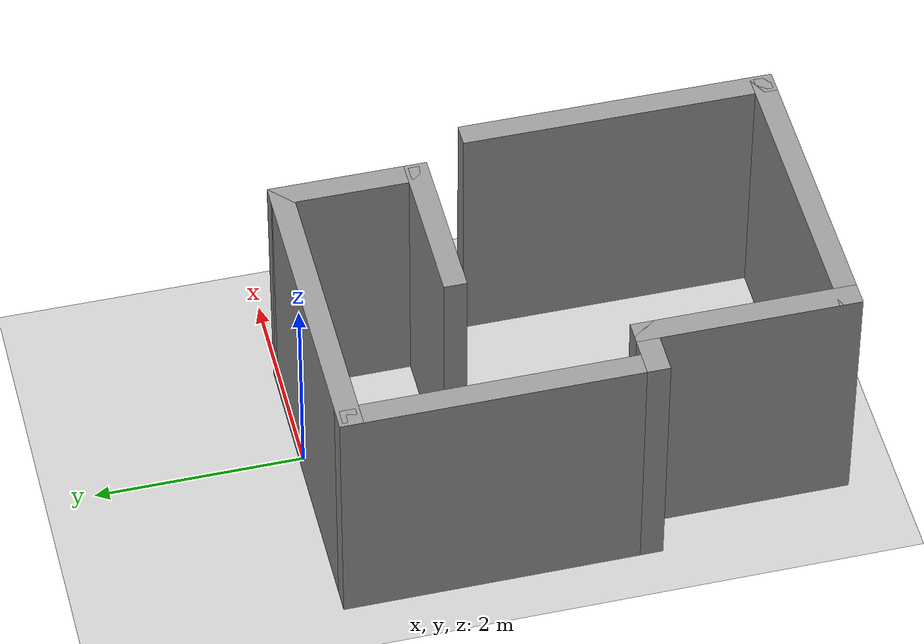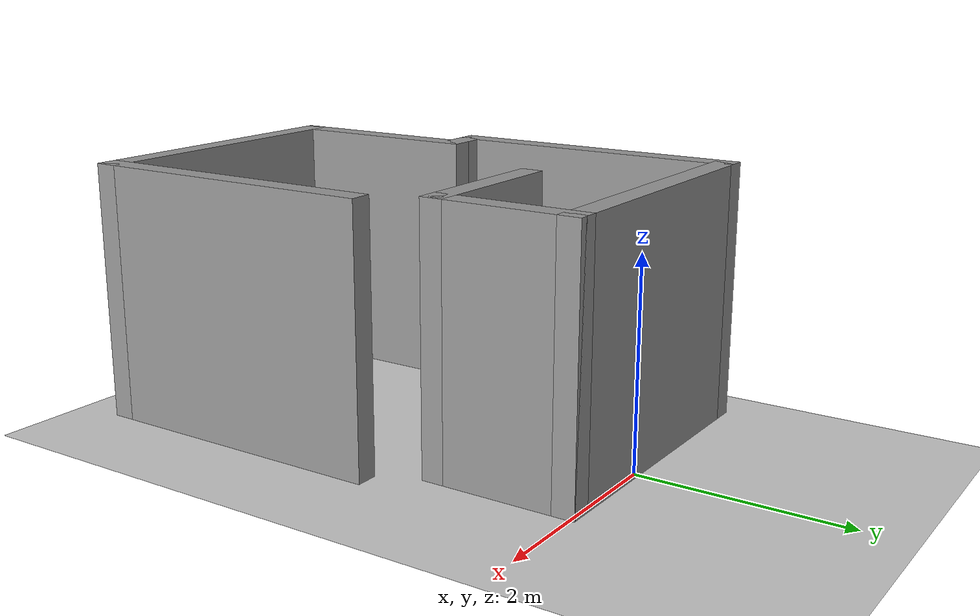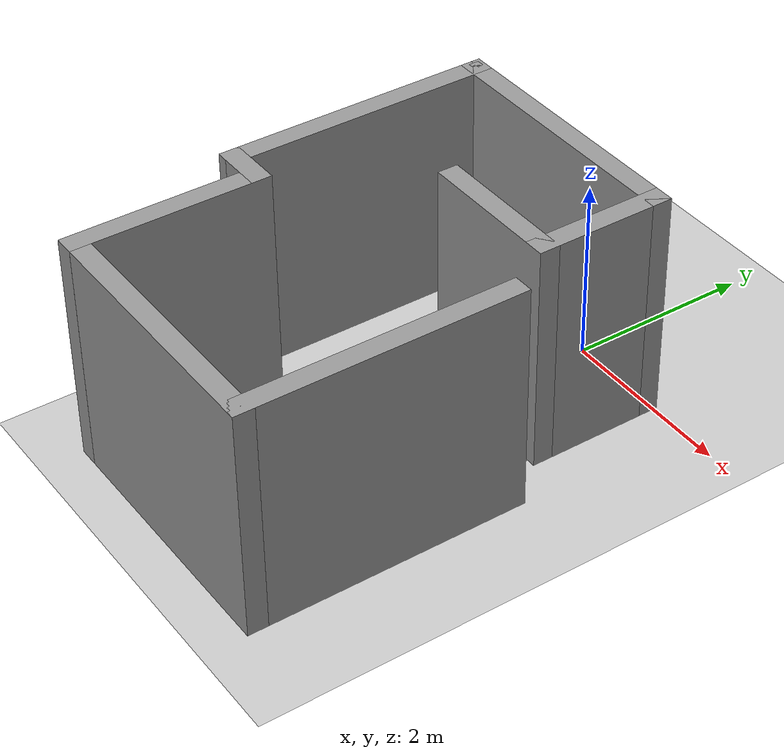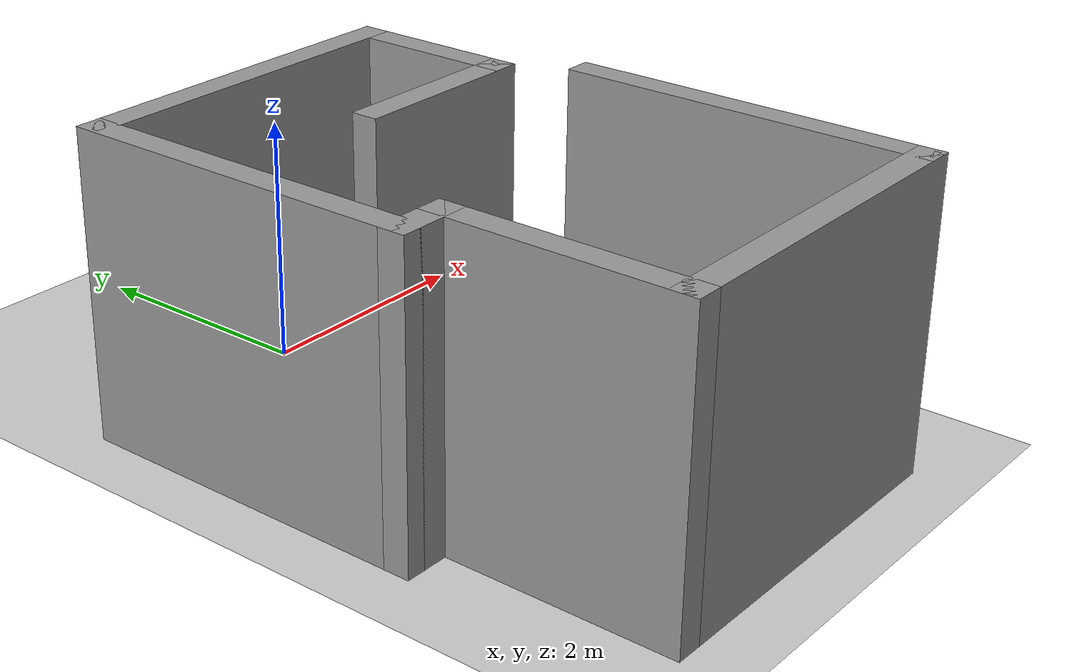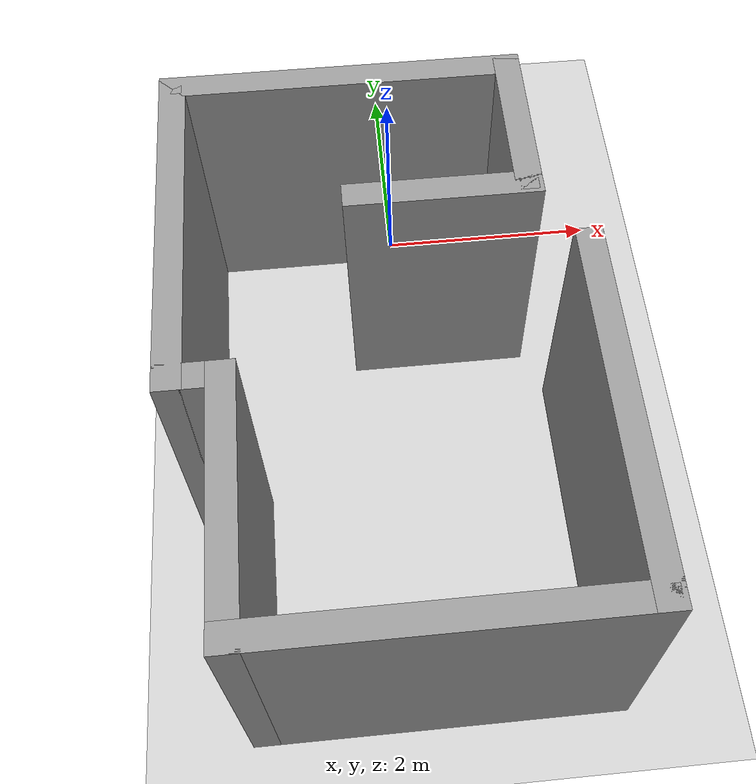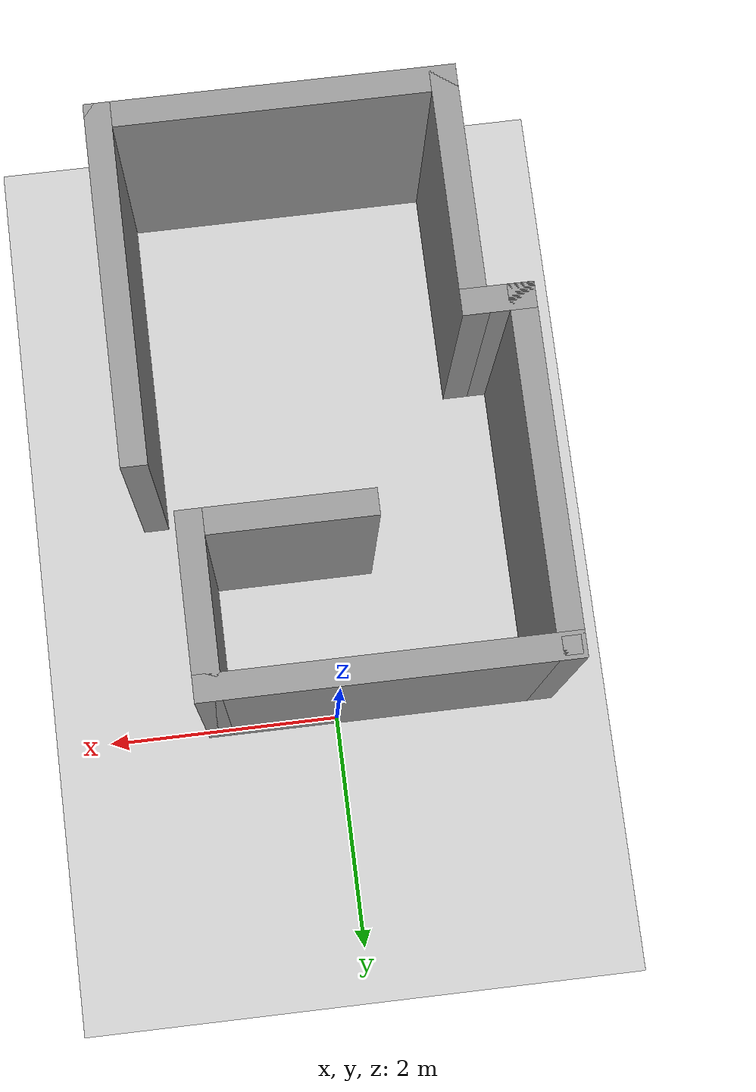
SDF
<sdf version="1.6">
 <world name="default">
  <light name="sun" type="directional">
   <pose>0 0 10 0 -0 0</pose>
   <diffuse>0.8 0.8 0.8 1</diffuse>
   <specular>0.2 0.2 0.2 1</specular>
   <attenuation>
    <range>1000</range>
    <constant>0.9</constant>
    <linear>0.01</linear>
    <quadratic>0.001</quadratic>
   </attenuation>
   <direction>-0.5 0.1 -0.9</direction>
  </light>
  <model name="ground_plane">
   <static>1</static>
   <link name="link">
    <collision name="collision">
     <geometry><plane><normal>0 0 1</normal><size>100 100</size></plane></geometry>
     <surface>
      <contact><collide_bitmask>65535</collide_bitmask></contact>
      <friction><ode><mu>100</mu><mu2>50</mu2></ode></friction>
     </surface>
    </collision>
    <visual name="visual">
     <cast_shadows>0</cast_shadows>
     <geometry><plane><normal>0 0 1</normal><size>100 100</size></plane></geometry>
     <material>
      <script><uri>file://media/materials/scripts/gazebo.material</uri><name>Gazebo/Grey</name></script>
     </material>
    </visual>
   </link>
  </model>
  <gravity>0 0 -9.8</gravity>
  <magnetic_field>6e-06 2.3e-05 -4.2e-05</magnetic_field>
  <atmosphere type="adiabatic"/>
  <physics name="default_physics" default="0" type="ode">
   <max_step_size>0.001</max_step_size>
   <real_time_factor>1</real_time_factor>
   <real_time_update_rate>1000</real_time_update_rate>
  </physics>
  <scene><ambient>0.4 0.4 0.4 1</ambient><background>0.7 0.7 0.7 1</background><shadows>1</shadows></scene>
  <audio><device>default</device></audio>
  <spherical_coordinates>
   <surface_model>EARTH_WGS84</surface_model>
   <latitude_deg>0</latitude_deg>
   <longitude_deg>0</longitude_deg>
   <elevation>0</elevation>
   <heading_deg>0</heading_deg>
  </spherical_coordinates>
  <model name="Environment">
   <pose>-0.194013 -2.42989 0 0 -0 0</pose>
   <link name="Wall_0">
    <collision name="Wall_0_Collision">
     <geometry><box><size>3.039 0.22 2.5</size></box></geometry>
     <pose>0 0 1.25 0 -0 0</pose>
    </collision>
    <visual name="Wall_0_Visual">
     <pose>0 0 1.25 0 -0 0</pose>
     <geometry><box><size>3.039 0.22 2.5</size></box></geometry>
     <material>
      <script><uri>file://media/materials/scripts/gazebo.material</uri><name>Gazebo/Grey</name></script>
      <ambient>1 1 1 1</ambient>
     </material>
     <meta><layer>0</layer></meta>
    </visual>
    <pose>1.59999 -0.952178 0 0 -0 -1.5708</pose>
   </link>
   <link name="Wall_1">
    <collision name="Wall_1_Collision">
     <geometry><box><size>0.15 0.15 2.5</size></box></geometry>
     <pose>0 0 1.25 0 -0 0</pose>
    </collision>
    <visual name="Wall_1_Visual">
     <pose>0 0 1.25 0 -0 0</pose>
     <geometry><box><size>0.15 0.15 2.5</size></box></geometry>
     <material>
      <script><uri>file://media/materials/scripts/gazebo.material</uri><name>Gazebo/Grey</name></script>
      <ambient>1 1 1 1</ambient>
     </material>
     <meta><layer>0</layer></meta>
    </visual>
    <pose>1.59999 -2.36168 0 0 -0 0</pose>
   </link>
   <link name="Wall_10">
    <collision name="Wall_10_Collision">
     <geometry><box><size>0.15 0.15 2.5</size></box></geometry>
     <pose>0 0 1.25 0 -0 0</pose>
    </collision>
    <visual name="Wall_10_Visual">
     <pose>0 0 1.25 0 -0 0</pose>
     <geometry><box><size>0.15 0.15 2.5</size></box></geometry>
     <material>
      <script><uri>file://media/materials/scripts/gazebo.material</uri><name>Gazebo/Grey</name></script>
      <ambient>1 1 1 1</ambient>
     </material>
     <meta><layer>0</layer></meta>
    </visual>
    <pose>-1.59999 2.36189 0 0 -0 0</pose>
   </link>
   <link name="Wall_12">
    <collision name="Wall_12_Collision">
     <geometry><box><size>3.039 0.22 2.5</size></box></geometry>
     <pose>0 0 1.25 0 -0 0</pose>
    </collision>
    <visual name="Wall_12_Visual">
     <pose>0 0 1.25 0 -0 0</pose>
     <geometry><box><size>3.039 0.22 2.5</size></box></geometry>
     <material>
      <script><uri>file://media/materials/scripts/gazebo.material</uri><name>Gazebo/Grey</name></script>
      <ambient>1 1 1 1</ambient>
     </material>
     <meta><layer>0</layer></meta>
    </visual>
    <pose>-0.190487 2.36189 0 0 -0 0</pose>
   </link>
   <link name="Wall_14">
    <collision name="Wall_14_Collision">
     <geometry><box><size>1.515 0.22 2.5</size></box></geometry>
     <pose>0 0 1.25 0 -0 0</pose>
    </collision>
    <visual name="Wall_14_Visual">
     <pose>0 0 1.25 0 -0 0</pose>
     <geometry><box><size>1.515 0.22 2.5</size></box></geometry>
     <material>
      <script><uri>file://media/materials/scripts/gazebo.material</uri><name>Gazebo/Grey</name></script>
      <ambient>1 1 1 1</ambient>
     </material>
     <meta><layer>0</layer></meta>
    </visual>
    <pose>1.21901 1.71439 0 0 -0 -1.5708</pose>
   </link>
   <link name="Wall_15">
    <collision name="Wall_15_Collision">
     <geometry><box><size>0.15 0.15 2.5</size></box></geometry>
     <pose>0 0 1.25 0 -0 0</pose>
    </collision>
    <visual name="Wall_15_Visual">
     <pose>0 0 1.25 0 -0 0</pose>
     <geometry><box><size>0.15 0.15 2.5</size></box></geometry>
     <material>
      <script><uri>file://media/materials/scripts/gazebo.material</uri><name>Gazebo/Grey</name></script>
      <ambient>1 1 1 1</ambient>
     </material>
     <meta><layer>0</layer></meta>
    </visual>
    <pose>1.21901 1.06689 0 0 -0 0</pose>
   </link>
   <link name="Wall_17">
    <collision name="Wall_17_Collision">
     <geometry><box><size>1.594 0.22 2.5</size></box></geometry>
     <pose>0 0 1.25 0 -0 0</pose>
    </collision>
    <visual name="Wall_17_Visual">
     <pose>0 0 1.25 0 -0 0</pose>
     <geometry><box><size>1.594 0.22 2.5</size></box></geometry>
     <material>
      <script><uri>file://media/materials/scripts/gazebo.material</uri><name>Gazebo/Grey</name></script>
      <ambient>1 1 1 1</ambient>
     </material>
     <meta><layer>0</layer></meta>
    </visual>
    <pose>0.532013 1.06689 0 0 -0 3.14159</pose>
   </link>
   <link name="Wall_3">
    <collision name="Wall_3_Collision">
     <geometry><box><size>3.039 0.22 2.5</size></box></geometry>
     <pose>0 0 1.25 0 -0 0</pose>
    </collision>
    <visual name="Wall_3_Visual">
     <pose>0 0 1.25 0 -0 0</pose>
     <geometry><box><size>3.039 0.22 2.5</size></box></geometry>
     <material>
      <script><uri>file://media/materials/scripts/gazebo.material</uri><name>Gazebo/Grey</name></script>
      <ambient>1 1 1 1</ambient>
     </material>
     <meta><layer>0</layer></meta>
    </visual>
    <pose>0.190487 -2.36168 0 0 -0 3.14159</pose>
   </link>
   <link name="Wall_5">
    <collision name="Wall_5_Collision">
     <geometry><box><size>2.125 0.22 2.5</size></box></geometry>
     <pose>0 0 1.25 0 -0 0</pose>
    </collision>
    <visual name="Wall_5_Visual">
     <pose>0 0 1.25 0 -0 0</pose>
     <geometry><box><size>2.125 0.22 2.5</size></box></geometry>
     <material>
      <script><uri>file://media/materials/scripts/gazebo.material</uri><name>Gazebo/Grey</name></script>
      <ambient>1 1 1 1</ambient>
     </material>
     <meta><layer>0</layer></meta>
    </visual>
    <pose>-1.219 -1.40939 0 0 -0 1.57078</pose>
   </link>
   <link name="Wall_7">
    <collision name="Wall_7_Collision">
     <geometry><box><size>0.601 0.22 2.5</size></box></geometry>
     <pose>0 0 1.25 0 -0 0</pose>
    </collision>
    <visual name="Wall_7_Visual">
     <pose>0 0 1.25 0 -0 0</pose>
     <geometry><box><size>0.601 0.22 2.5</size></box></geometry>
     <material>
      <script><uri>file://media/materials/scripts/gazebo.material</uri><name>Gazebo/Grey</name></script>
      <ambient>1 1 1 1</ambient>
     </material>
     <meta><layer>0</layer></meta>
    </visual>
    <pose>-1.40949 -0.457107 0 0 -0 3.14159</pose>
   </link>
   <link name="Wall_9">
    <collision name="Wall_9_Collision">
     <geometry><box><size>3.039 0.22 2.5</size></box></geometry>
     <pose>0 0 1.25 0 -0 0</pose>
    </collision>
    <visual name="Wall_9_Visual">
     <pose>0 0 1.25 0 -0 0</pose>
     <geometry><box><size>3.039 0.22 2.5</size></box></geometry>
     <material>
      <script><uri>file://media/materials/scripts/gazebo.material</uri><name>Gazebo/Grey</name></script>
      <ambient>1 1 1 1</ambient>
     </material>
     <meta><layer>0</layer></meta>
    </visual>
    <pose>-1.59999 0.952393 0 0 -0 1.5708</pose>
   </link>
   <static>1</static>
  </model>
 </world>
</sdf>
